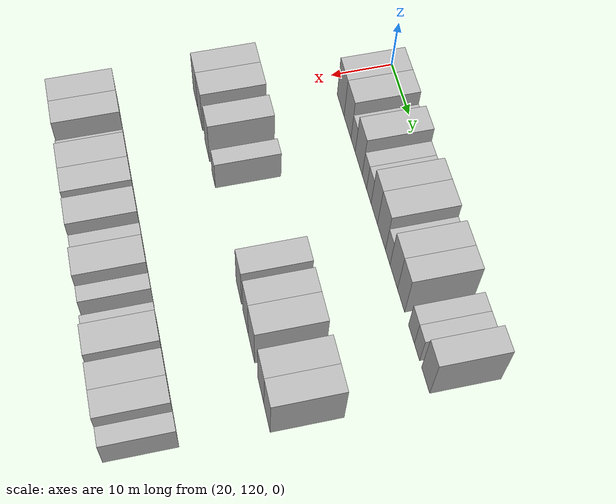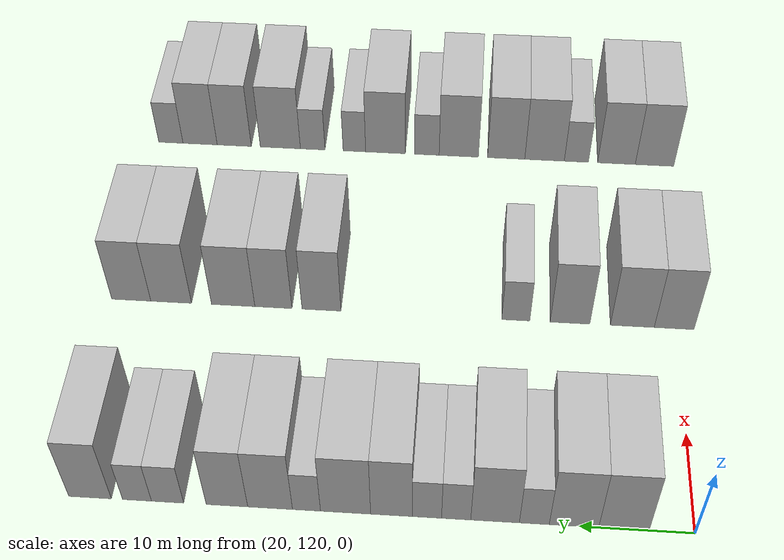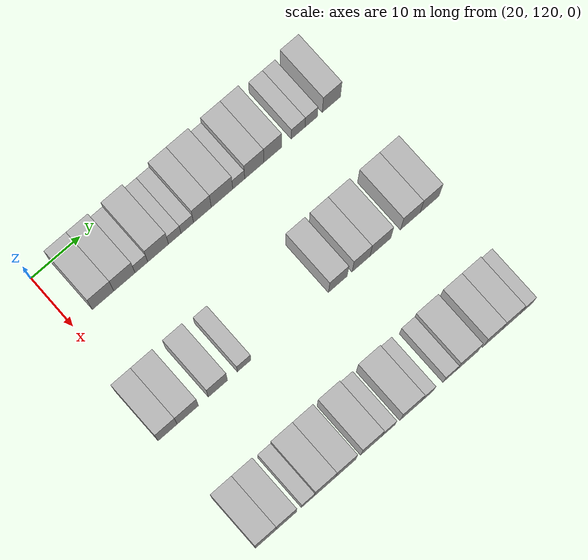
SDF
<sdf version="1.6">
 <world name="default">
  <model name="building_119">
   <static>1</static>
   <pose>25.0000 126.1278 0 0.000000 0.000000 0.000000</pose>
   <link name="link">
    <pose>0 0 4.50 0 0 0</pose>
    <collision name="collision"><geometry><box><size>10.0000 4.3670 9.0000</size></box></geometry></collision>
    <visual name="visual">
     <cast_shadows>0</cast_shadows>
     <geometry><box><size>10.0000 4.3670 9.0000</size></box></geometry>
     <material>
      <script>
       <uri>model://HANNAS_wall/materials/scripts</uri>
       <uri>model://HANNAS_wall/materials/textures</uri>
       <name>vrc/HANNAS_wall</name>
      </script>
     </material>
    </visual>
   </link>
  </model>
  <model name="building_120">
   <static>1</static>
   <pose>25.0000 130.4576 0 0.000000 0.000000 0.000000</pose>
   <link name="link">
    <pose>0 0 4.50 0 0 0</pose>
    <collision name="collision"><geometry><box><size>10.0000 4.2925 9.0000</size></box></geometry></collision>
    <visual name="visual">
     <cast_shadows>0</cast_shadows>
     <geometry><box><size>10.0000 4.2925 9.0000</size></box></geometry>
     <material>
      <script>
       <uri>model://HANNAS_wall/materials/scripts</uri>
       <uri>model://HANNAS_wall/materials/textures</uri>
       <name>vrc/HANNAS_wall</name>
      </script>
     </material>
    </visual>
   </link>
  </model>
  <model name="building_121">
   <static>1</static>
   <pose>25.0000 133.9042 0 0.000000 0.000000 0.000000</pose>
   <link name="link">
    <pose>0 0 3.00 0 0 0</pose>
    <collision name="collision"><geometry><box><size>10.0000 2.6008 6.0000</size></box></geometry></collision>
    <visual name="visual">
     <cast_shadows>0</cast_shadows>
     <geometry><box><size>10.0000 2.6008 6.0000</size></box></geometry>
     <material>
      <script>
       <uri>model://HANNAS_wall/materials/scripts</uri>
       <uri>model://HANNAS_wall/materials/textures</uri>
       <name>vrc/HANNAS_wall</name>
      </script>
     </material>
    </visual>
   </link>
  </model>
  <model name="building_122">
   <static>1</static>
   <pose>25.0000 137.3210 0 0.000000 0.000000 0.000000</pose>
   <link name="link">
    <pose>0 0 4.50 0 0 0</pose>
    <collision name="collision"><geometry><box><size>10.0000 4.2329 9.0000</size></box></geometry></collision>
    <visual name="visual">
     <cast_shadows>0</cast_shadows>
     <geometry><box><size>10.0000 4.2329 9.0000</size></box></geometry>
     <material>
      <script>
       <uri>model://HANNAS_wall/materials/scripts</uri>
       <uri>model://HANNAS_wall/materials/textures</uri>
       <name>vrc/HANNAS_wall</name>
      </script>
     </material>
    </visual>
   </link>
  </model>
  <model name="building_123">
   <static>1</static>
   <pose>25.0000 140.7127 0 0.000000 0.000000 0.000000</pose>
   <link name="link">
    <pose>0 0 3.00 0 0 0</pose>
    <collision name="collision"><geometry><box><size>10.0000 2.5505 6.0000</size></box></geometry></collision>
    <visual name="visual">
     <cast_shadows>0</cast_shadows>
     <geometry><box><size>10.0000 2.5505 6.0000</size></box></geometry>
     <material>
      <script>
       <uri>model://HANNAS_wall/materials/scripts</uri>
       <uri>model://HANNAS_wall/materials/textures</uri>
       <name>vrc/HANNAS_wall</name>
      </script>
     </material>
    </visual>
   </link>
  </model>
  <model name="building_124">
   <static>1</static>
   <pose>25.0000 143.2748 0 0.000000 0.000000 0.000000</pose>
   <link name="link">
    <pose>0 0 3.00 0 0 0</pose>
    <collision name="collision"><geometry><box><size>10.0000 2.5737 6.0000</size></box></geometry></collision>
    <visual name="visual">
     <cast_shadows>0</cast_shadows>
     <geometry><box><size>10.0000 2.5737 6.0000</size></box></geometry>
     <material>
      <script>
       <uri>model://HANNAS_wall/materials/scripts</uri>
       <uri>model://HANNAS_wall/materials/textures</uri>
       <name>vrc/HANNAS_wall</name>
      </script>
     </material>
    </visual>
   </link>
  </model>
  <model name="building_125">
   <static>1</static>
   <pose>25.0000 146.3825 0 0.000000 0.000000 0.000000</pose>
   <link name="link">
    <pose>0 0 4.50 0 0 0</pose>
    <collision name="collision"><geometry><box><size>10.0000 3.6417 9.0000</size></box></geometry></collision>
    <visual name="visual">
     <cast_shadows>0</cast_shadows>
     <geometry><box><size>10.0000 3.6417 9.0000</size></box></geometry>
     <material>
      <script>
       <uri>model://HANNAS_wall/materials/scripts</uri>
       <uri>model://HANNAS_wall/materials/textures</uri>
       <name>vrc/HANNAS_wall</name>
      </script>
     </material>
    </visual>
   </link>
  </model>
  <model name="building_126">
   <static>1</static>
   <pose>25.0000 150.4087 0 0.000000 0.000000 0.000000</pose>
   <link name="link">
    <pose>0 0 4.50 0 0 0</pose>
    <collision name="collision"><geometry><box><size>10.0000 4.4107 9.0000</size></box></geometry></collision>
    <visual name="visual">
     <cast_shadows>0</cast_shadows>
     <geometry><box><size>10.0000 4.4107 9.0000</size></box></geometry>
     <material>
      <script>
       <uri>model://HANNAS_wall/materials/scripts</uri>
       <uri>model://HANNAS_wall/materials/textures</uri>
       <name>vrc/HANNAS_wall</name>
      </script>
     </material>
    </visual>
   </link>
  </model>
  <model name="building_127">
   <static>1</static>
   <pose>25.0000 153.8480 0 0.000000 0.000000 0.000000</pose>
   <link name="link">
    <pose>0 0 3.00 0 0 0</pose>
    <collision name="collision"><geometry><box><size>10.0000 2.4679 6.0000</size></box></geometry></collision>
    <visual name="visual">
     <cast_shadows>0</cast_shadows>
     <geometry><box><size>10.0000 2.4679 6.0000</size></box></geometry>
     <material>
      <script>
       <uri>model://HANNAS_wall/materials/scripts</uri>
       <uri>model://HANNAS_wall/materials/textures</uri>
       <name>vrc/HANNAS_wall</name>
      </script>
     </material>
    </visual>
   </link>
  </model>
  <model name="building_128">
   <static>1</static>
   <pose>25.0000 157.0626 0 0.000000 0.000000 0.000000</pose>
   <link name="link">
    <pose>0 0 4.50 0 0 0</pose>
    <collision name="collision"><geometry><box><size>10.0000 3.9612 9.0000</size></box></geometry></collision>
    <visual name="visual">
     <cast_shadows>0</cast_shadows>
     <geometry><box><size>10.0000 3.9612 9.0000</size></box></geometry>
     <material>
      <script>
       <uri>model://HANNAS_wall/materials/scripts</uri>
       <uri>model://HANNAS_wall/materials/textures</uri>
       <name>vrc/HANNAS_wall</name>
      </script>
     </material>
    </visual>
   </link>
  </model>
  <model name="building_129">
   <static>1</static>
   <pose>25.0000 160.8853 0 0.000000 0.000000 0.000000</pose>
   <link name="link">
    <pose>0 0 4.50 0 0 0</pose>
    <collision name="collision"><geometry><box><size>10.0000 3.6843 9.0000</size></box></geometry></collision>
    <visual name="visual">
     <cast_shadows>0</cast_shadows>
     <geometry><box><size>10.0000 3.6843 9.0000</size></box></geometry>
     <material>
      <script>
       <uri>model://HANNAS_wall/materials/scripts</uri>
       <uri>model://HANNAS_wall/materials/textures</uri>
       <name>vrc/HANNAS_wall</name>
      </script>
     </material>
    </visual>
   </link>
  </model>
  <model name="building_130">
   <static>1</static>
   <pose>25.0000 166.1612 0 0.000000 0.000000 0.000000</pose>
   <link name="link">
    <pose>0 0 3.00 0 0 0</pose>
    <collision name="collision"><geometry><box><size>10.0000 2.8673 6.0000</size></box></geometry></collision>
    <visual name="visual">
     <cast_shadows>0</cast_shadows>
     <geometry><box><size>10.0000 2.8673 6.0000</size></box></geometry>
     <material>
      <script>
       <uri>model://HANNAS_wall/materials/scripts</uri>
       <uri>model://HANNAS_wall/materials/textures</uri>
       <name>vrc/HANNAS_wall</name>
      </script>
     </material>
    </visual>
   </link>
  </model>
  <model name="building_131">
   <static>1</static>
   <pose>25.0000 168.8858 0 0.000000 0.000000 0.000000</pose>
   <link name="link">
    <pose>0 0 3.00 0 0 0</pose>
    <collision name="collision"><geometry><box><size>10.0000 2.5820 6.0000</size></box></geometry></collision>
    <visual name="visual">
     <cast_shadows>0</cast_shadows>
     <geometry><box><size>10.0000 2.5820 6.0000</size></box></geometry>
     <material>
      <script>
       <uri>model://HANNAS_wall/materials/scripts</uri>
       <uri>model://HANNAS_wall/materials/textures</uri>
       <name>vrc/HANNAS_wall</name>
      </script>
     </material>
    </visual>
   </link>
  </model>
  <model name="building_132">
   <static>1</static>
   <pose>25.0000 173.0823 0 0.000000 0.000000 0.000000</pose>
   <link name="link">
    <pose>0 0 4.50 0 0 0</pose>
    <collision name="collision"><geometry><box><size>10.0000 3.8110 9.0000</size></box></geometry></collision>
    <visual name="visual">
     <cast_shadows>0</cast_shadows>
     <geometry><box><size>10.0000 3.8110 9.0000</size></box></geometry>
     <material>
      <script>
       <uri>model://HANNAS_wall/materials/scripts</uri>
       <uri>model://HANNAS_wall/materials/textures</uri>
       <name>vrc/HANNAS_wall</name>
      </script>
     </material>
    </visual>
   </link>
  </model>
  <model name="building_309">
   <static>1</static>
   <pose>47.0000 120.2631 0 0.000000 0.000000 0.000000</pose>
   <link name="link">
    <pose>0 0 4.50 0 0 0</pose>
    <collision name="collision"><geometry><box><size>10.0000 3.8599 9.0000</size></box></geometry></collision>
    <visual name="visual">
     <cast_shadows>0</cast_shadows>
     <geometry><box><size>10.0000 3.8599 9.0000</size></box></geometry>
     <material>
      <script>
       <uri>model://HANNAS_wall/materials/scripts</uri>
       <uri>model://HANNAS_wall/materials/textures</uri>
       <name>vrc/HANNAS_wall</name>
      </script>
     </material>
    </visual>
   </link>
  </model>
  <model name="building_310">
   <static>1</static>
   <pose>47.0000 124.3333 0 0.000000 0.000000 0.000000</pose>
   <link name="link">
    <pose>0 0 4.50 0 0 0</pose>
    <collision name="collision"><geometry><box><size>10.0000 4.2805 9.0000</size></box></geometry></collision>
    <visual name="visual">
     <cast_shadows>0</cast_shadows>
     <geometry><box><size>10.0000 4.2805 9.0000</size></box></geometry>
     <material>
      <script>
       <uri>model://HANNAS_wall/materials/scripts</uri>
       <uri>model://HANNAS_wall/materials/textures</uri>
       <name>vrc/HANNAS_wall</name>
      </script>
     </material>
    </visual>
   </link>
  </model>
  <model name="building_311">
   <static>1</static>
   <pose>47.0000 130.4119 0 0.000000 0.000000 0.000000</pose>
   <link name="link">
    <pose>0 0 4.50 0 0 0</pose>
    <collision name="collision"><geometry><box><size>10.0000 3.8766 9.0000</size></box></geometry></collision>
    <visual name="visual">
     <cast_shadows>0</cast_shadows>
     <geometry><box><size>10.0000 3.8766 9.0000</size></box></geometry>
     <material>
      <script>
       <uri>model://HANNAS_wall/materials/scripts</uri>
       <uri>model://HANNAS_wall/materials/textures</uri>
       <name>vrc/HANNAS_wall</name>
      </script>
     </material>
    </visual>
   </link>
  </model>
  <model name="building_312">
   <static>1</static>
   <pose>47.0000 135.7280 0 0.000000 0.000000 0.000000</pose>
   <link name="link">
    <pose>0 0 3.00 0 0 0</pose>
    <collision name="collision"><geometry><box><size>10.0000 2.7555 6.0000</size></box></geometry></collision>
    <visual name="visual">
     <cast_shadows>0</cast_shadows>
     <geometry><box><size>10.0000 2.7555 6.0000</size></box></geometry>
     <material>
      <script>
       <uri>model://HANNAS_wall/materials/scripts</uri>
       <uri>model://HANNAS_wall/materials/textures</uri>
       <name>vrc/HANNAS_wall</name>
      </script>
     </material>
    </visual>
   </link>
  </model>
  <model name="building_313">
   <static>1</static>
   <pose>47.0000 154.9068 0 0.000000 0.000000 0.000000</pose>
   <link name="link">
    <pose>0 0 4.50 0 0 0</pose>
    <collision name="collision"><geometry><box><size>10.0000 3.8674 9.0000</size></box></geometry></collision>
    <visual name="visual">
     <cast_shadows>0</cast_shadows>
     <geometry><box><size>10.0000 3.8674 9.0000</size></box></geometry>
     <material>
      <script>
       <uri>model://HANNAS_wall/materials/scripts</uri>
       <uri>model://HANNAS_wall/materials/textures</uri>
       <name>vrc/HANNAS_wall</name>
      </script>
     </material>
    </visual>
   </link>
  </model>
  <model name="building_314">
   <static>1</static>
   <pose>47.0000 159.6896 0 0.000000 0.000000 0.000000</pose>
   <link name="link">
    <pose>0 0 4.50 0 0 0</pose>
    <collision name="collision"><geometry><box><size>10.0000 3.6983 9.0000</size></box></geometry></collision>
    <visual name="visual">
     <cast_shadows>0</cast_shadows>
     <geometry><box><size>10.0000 3.6983 9.0000</size></box></geometry>
     <material>
      <script>
       <uri>model://HANNAS_wall/materials/scripts</uri>
       <uri>model://HANNAS_wall/materials/textures</uri>
       <name>vrc/HANNAS_wall</name>
      </script>
     </material>
    </visual>
   </link>
  </model>
  <model name="building_315">
   <static>1</static>
   <pose>47.0000 163.7073 0 0.000000 0.000000 0.000000</pose>
   <link name="link">
    <pose>0 0 4.50 0 0 0</pose>
    <collision name="collision"><geometry><box><size>10.0000 4.3372 9.0000</size></box></geometry></collision>
    <visual name="visual">
     <cast_shadows>0</cast_shadows>
     <geometry><box><size>10.0000 4.3372 9.0000</size></box></geometry>
     <material>
      <script>
       <uri>model://HANNAS_wall/materials/scripts</uri>
       <uri>model://HANNAS_wall/materials/textures</uri>
       <name>vrc/HANNAS_wall</name>
      </script>
     </material>
    </visual>
   </link>
  </model>
  <model name="building_316">
   <static>1</static>
   <pose>47.0000 169.9186 0 0.000000 0.000000 0.000000</pose>
   <link name="link">
    <pose>0 0 4.50 0 0 0</pose>
    <collision name="collision"><geometry><box><size>10.0000 4.0854 9.0000</size></box></geometry></collision>
    <visual name="visual">
     <cast_shadows>0</cast_shadows>
     <geometry><box><size>10.0000 4.0854 9.0000</size></box></geometry>
     <material>
      <script>
       <uri>model://HANNAS_wall/materials/scripts</uri>
       <uri>model://HANNAS_wall/materials/textures</uri>
       <name>vrc/HANNAS_wall</name>
      </script>
     </material>
    </visual>
   </link>
  </model>
  <model name="building_317">
   <static>1</static>
   <pose>47.0000 173.9270 0 0.000000 0.000000 0.000000</pose>
   <link name="link">
    <pose>0 0 4.50 0 0 0</pose>
    <collision name="collision"><geometry><box><size>10.0000 3.9312 9.0000</size></box></geometry></collision>
    <visual name="visual">
     <cast_shadows>0</cast_shadows>
     <geometry><box><size>10.0000 3.9312 9.0000</size></box></geometry>
     <material>
      <script>
       <uri>model://HANNAS_wall/materials/scripts</uri>
       <uri>model://HANNAS_wall/materials/textures</uri>
       <name>vrc/HANNAS_wall</name>
      </script>
     </material>
    </visual>
   </link>
  </model>
  <model name="building_495">
   <static>1</static>
   <pose>69.0000 120.8574 0 0.000000 0.000000 0.000000</pose>
   <link name="link">
    <pose>0 0 4.50 0 0 0</pose>
    <collision name="collision"><geometry><box><size>10.0000 4.1684 9.0000</size></box></geometry></collision>
    <visual name="visual">
     <cast_shadows>0</cast_shadows>
     <geometry><box><size>10.0000 4.1684 9.0000</size></box></geometry>
     <material>
      <script>
       <uri>model://HANNAS_wall/materials/scripts</uri>
       <uri>model://HANNAS_wall/materials/textures</uri>
       <name>vrc/HANNAS_wall</name>
      </script>
     </material>
    </visual>
   </link>
  </model>
  <model name="building_496">
   <static>1</static>
   <pose>69.0000 124.9801 0 0.000000 0.000000 0.000000</pose>
   <link name="link">
    <pose>0 0 4.50 0 0 0</pose>
    <collision name="collision"><geometry><box><size>10.0000 4.0771 9.0000</size></box></geometry></collision>
    <visual name="visual">
     <cast_shadows>0</cast_shadows>
     <geometry><box><size>10.0000 4.0771 9.0000</size></box></geometry>
     <material>
      <script>
       <uri>model://HANNAS_wall/materials/scripts</uri>
       <uri>model://HANNAS_wall/materials/textures</uri>
       <name>vrc/HANNAS_wall</name>
      </script>
     </material>
    </visual>
   </link>
  </model>
  <model name="building_497">
   <static>1</static>
   <pose>69.0000 129.3316 0 0.000000 0.000000 0.000000</pose>
   <link name="link">
    <pose>0 0 3.00 0 0 0</pose>
    <collision name="collision"><geometry><box><size>10.0000 2.6259 6.0000</size></box></geometry></collision>
    <visual name="visual">
     <cast_shadows>0</cast_shadows>
     <geometry><box><size>10.0000 2.6259 6.0000</size></box></geometry>
     <material>
      <script>
       <uri>model://HANNAS_wall/materials/scripts</uri>
       <uri>model://HANNAS_wall/materials/textures</uri>
       <name>vrc/HANNAS_wall</name>
      </script>
     </material>
    </visual>
   </link>
  </model>
  <model name="building_498">
   <static>1</static>
   <pose>69.0000 132.7993 0 0.000000 0.000000 0.000000</pose>
   <link name="link">
    <pose>0 0 4.50 0 0 0</pose>
    <collision name="collision"><geometry><box><size>10.0000 4.3095 9.0000</size></box></geometry></collision>
    <visual name="visual">
     <cast_shadows>0</cast_shadows>
     <geometry><box><size>10.0000 4.3095 9.0000</size></box></geometry>
     <material>
      <script>
       <uri>model://HANNAS_wall/materials/scripts</uri>
       <uri>model://HANNAS_wall/materials/textures</uri>
       <name>vrc/HANNAS_wall</name>
      </script>
     </material>
    </visual>
   </link>
  </model>
  <model name="building_499">
   <static>1</static>
   <pose>69.0000 136.9867 0 0.000000 0.000000 0.000000</pose>
   <link name="link">
    <pose>0 0 4.50 0 0 0</pose>
    <collision name="collision"><geometry><box><size>10.0000 4.0652 9.0000</size></box></geometry></collision>
    <visual name="visual">
     <cast_shadows>0</cast_shadows>
     <geometry><box><size>10.0000 4.0652 9.0000</size></box></geometry>
     <material>
      <script>
       <uri>model://HANNAS_wall/materials/scripts</uri>
       <uri>model://HANNAS_wall/materials/textures</uri>
       <name>vrc/HANNAS_wall</name>
      </script>
     </material>
    </visual>
   </link>
  </model>
  <model name="building_500">
   <static>1</static>
   <pose>69.0000 142.1716 0 0.000000 0.000000 0.000000</pose>
   <link name="link">
    <pose>0 0 4.50 0 0 0</pose>
    <collision name="collision"><geometry><box><size>10.0000 4.3045 9.0000</size></box></geometry></collision>
    <visual name="visual">
     <cast_shadows>0</cast_shadows>
     <geometry><box><size>10.0000 4.3045 9.0000</size></box></geometry>
     <material>
      <script>
       <uri>model://HANNAS_wall/materials/scripts</uri>
       <uri>model://HANNAS_wall/materials/textures</uri>
       <name>vrc/HANNAS_wall</name>
      </script>
     </material>
    </visual>
   </link>
  </model>
  <model name="building_501">
   <static>1</static>
   <pose>69.0000 145.6760 0 0.000000 0.000000 0.000000</pose>
   <link name="link">
    <pose>0 0 3.00 0 0 0</pose>
    <collision name="collision"><geometry><box><size>10.0000 2.7043 6.0000</size></box></geometry></collision>
    <visual name="visual">
     <cast_shadows>0</cast_shadows>
     <geometry><box><size>10.0000 2.7043 6.0000</size></box></geometry>
     <material>
      <script>
       <uri>model://HANNAS_wall/materials/scripts</uri>
       <uri>model://HANNAS_wall/materials/textures</uri>
       <name>vrc/HANNAS_wall</name>
      </script>
     </material>
    </visual>
   </link>
  </model>
  <model name="building_502">
   <static>1</static>
   <pose>69.0000 150.2177 0 0.000000 0.000000 0.000000</pose>
   <link name="link">
    <pose>0 0 4.50 0 0 0</pose>
    <collision name="collision"><geometry><box><size>10.0000 4.3791 9.0000</size></box></geometry></collision>
    <visual name="visual">
     <cast_shadows>0</cast_shadows>
     <geometry><box><size>10.0000 4.3791 9.0000</size></box></geometry>
     <material>
      <script>
       <uri>model://HANNAS_wall/materials/scripts</uri>
       <uri>model://HANNAS_wall/materials/textures</uri>
       <name>vrc/HANNAS_wall</name>
      </script>
     </material>
    </visual>
   </link>
  </model>
  <model name="building_503">
   <static>1</static>
   <pose>69.0000 153.6500 0 0.000000 0.000000 0.000000</pose>
   <link name="link">
    <pose>0 0 3.00 0 0 0</pose>
    <collision name="collision"><geometry><box><size>10.0000 2.4856 6.0000</size></box></geometry></collision>
    <visual name="visual">
     <cast_shadows>0</cast_shadows>
     <geometry><box><size>10.0000 2.4856 6.0000</size></box></geometry>
     <material>
      <script>
       <uri>model://HANNAS_wall/materials/scripts</uri>
       <uri>model://HANNAS_wall/materials/textures</uri>
       <name>vrc/HANNAS_wall</name>
      </script>
     </material>
    </visual>
   </link>
  </model>
  <model name="building_504">
   <static>1</static>
   <pose>69.0000 158.2536 0 0.000000 0.000000 0.000000</pose>
   <link name="link">
    <pose>0 0 3.00 0 0 0</pose>
    <collision name="collision"><geometry><box><size>10.0000 2.7216 6.0000</size></box></geometry></collision>
    <visual name="visual">
     <cast_shadows>0</cast_shadows>
     <geometry><box><size>10.0000 2.7216 6.0000</size></box></geometry>
     <material>
      <script>
       <uri>model://HANNAS_wall/materials/scripts</uri>
       <uri>model://HANNAS_wall/materials/textures</uri>
       <name>vrc/HANNAS_wall</name>
      </script>
     </material>
    </visual>
   </link>
  </model>
  <model name="building_505">
   <static>1</static>
   <pose>69.0000 161.8405 0 0.000000 0.000000 0.000000</pose>
   <link name="link">
    <pose>0 0 4.50 0 0 0</pose>
    <collision name="collision"><geometry><box><size>10.0000 4.4524 9.0000</size></box></geometry></collision>
    <visual name="visual">
     <cast_shadows>0</cast_shadows>
     <geometry><box><size>10.0000 4.4524 9.0000</size></box></geometry>
     <material>
      <script>
       <uri>model://HANNAS_wall/materials/scripts</uri>
       <uri>model://HANNAS_wall/materials/textures</uri>
       <name>vrc/HANNAS_wall</name>
      </script>
     </material>
    </visual>
   </link>
  </model>
  <model name="building_506">
   <static>1</static>
   <pose>69.0000 166.9620 0 0.000000 0.000000 0.000000</pose>
   <link name="link">
    <pose>0 0 4.50 0 0 0</pose>
    <collision name="collision"><geometry><box><size>10.0000 3.7907 9.0000</size></box></geometry></collision>
    <visual name="visual">
     <cast_shadows>0</cast_shadows>
     <geometry><box><size>10.0000 3.7907 9.0000</size></box></geometry>
     <material>
      <script>
       <uri>model://HANNAS_wall/materials/scripts</uri>
       <uri>model://HANNAS_wall/materials/textures</uri>
       <name>vrc/HANNAS_wall</name>
      </script>
     </material>
    </visual>
   </link>
  </model>
  <model name="building_507">
   <static>1</static>
   <pose>69.0000 170.7646 0 0.000000 0.000000 0.000000</pose>
   <link name="link">
    <pose>0 0 4.50 0 0 0</pose>
    <collision name="collision"><geometry><box><size>10.0000 3.8145 9.0000</size></box></geometry></collision>
    <visual name="visual">
     <cast_shadows>0</cast_shadows>
     <geometry><box><size>10.0000 3.8145 9.0000</size></box></geometry>
     <material>
      <script>
       <uri>model://HANNAS_wall/materials/scripts</uri>
       <uri>model://HANNAS_wall/materials/textures</uri>
       <name>vrc/HANNAS_wall</name>
      </script>
     </material>
    </visual>
   </link>
  </model>
  <model name="building_508">
   <static>1</static>
   <pose>69.0000 174.0242 0 0.000000 0.000000 0.000000</pose>
   <link name="link">
    <pose>0 0 3.00 0 0 0</pose>
    <collision name="collision"><geometry><box><size>10.0000 2.7048 6.0000</size></box></geometry></collision>
    <visual name="visual">
     <cast_shadows>0</cast_shadows>
     <geometry><box><size>10.0000 2.7048 6.0000</size></box></geometry>
     <material>
      <script>
       <uri>model://HANNAS_wall/materials/scripts</uri>
       <uri>model://HANNAS_wall/materials/textures</uri>
       <name>vrc/HANNAS_wall</name>
      </script>
     </material>
    </visual>
   </link>
  </model>
 </world>
</sdf>
